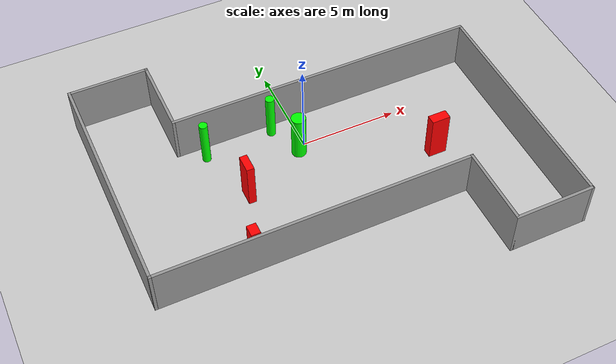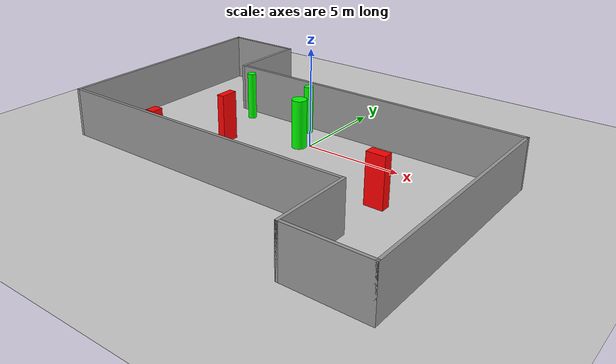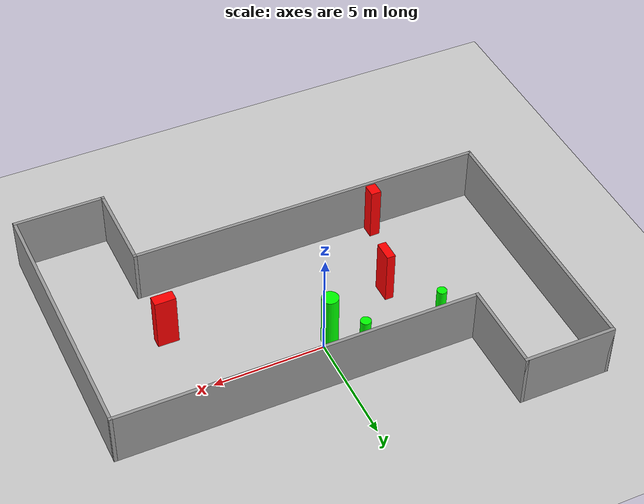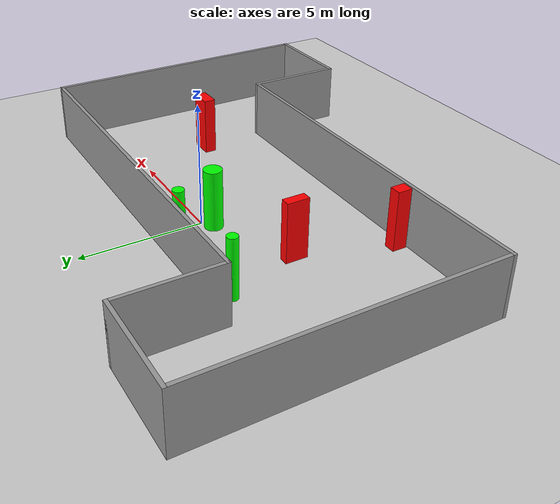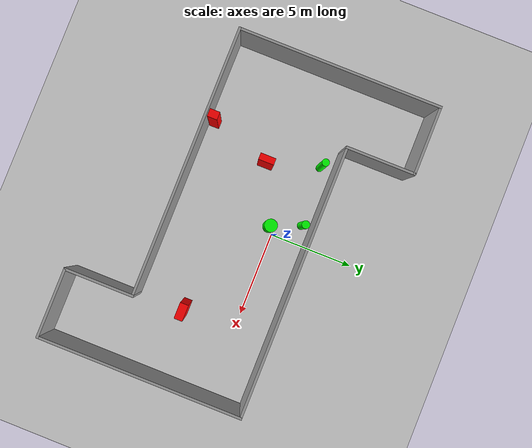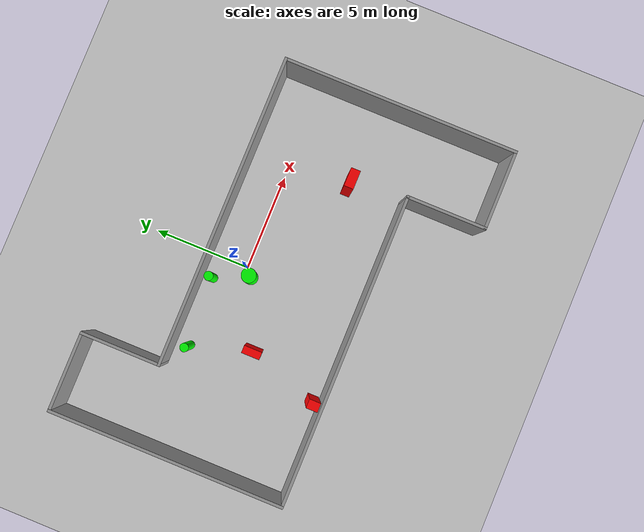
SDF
<sdf version="1.7">
 <world name="default">
  <light name="sun" type="directional">
   <pose>0 0 10 0 -0 0</pose>
   <diffuse>0.8 0.8 0.8 1</diffuse>
   <specular>0.2 0.2 0.2 1</specular>
   <attenuation>
    <range>1000</range>
    <constant>0.9</constant>
    <linear>0.01</linear>
    <quadratic>0.001</quadratic>
   </attenuation>
   <direction>-0.5 0.1 -0.9</direction>
   <spot><inner_angle>0</inner_angle><outer_angle>0</outer_angle><falloff>0</falloff></spot>
  </light>
  <model name="ground_plane">
   <static>1</static>
   <link name="link">
    <collision name="collision">
     <geometry><plane><normal>0 0 1</normal><size>100 100</size></plane></geometry>
     <surface>
      <contact><collide_bitmask>65535</collide_bitmask></contact>
      <friction><ode><mu>100</mu><mu2>50</mu2></ode></friction>
     </surface>
    </collision>
    <visual name="visual">
     <cast_shadows>0</cast_shadows>
     <geometry><plane><normal>0 0 1</normal><size>100 100</size></plane></geometry>
     <material>
      <script><uri>file://media/materials/scripts/gazebo.material</uri><name>Gazebo/Grey</name></script>
     </material>
    </visual>
   </link>
  </model>
  <gravity>0 0 -9.8</gravity>
  <magnetic_field>6e-06 2.3e-05 -4.2e-05</magnetic_field>
  <atmosphere type="adiabatic"/>
  <physics type="ode">
   <max_step_size>0.001</max_step_size>
   <real_time_factor>1</real_time_factor>
   <real_time_update_rate>1000</real_time_update_rate>
  </physics>
  <scene><ambient>0.4 0.4 0.4 1</ambient><background>0.7 0.7 0.7 1</background><shadows>1</shadows></scene>
  <spherical_coordinates>
   <surface_model>EARTH_WGS84</surface_model>
   <latitude_deg>0</latitude_deg>
   <longitude_deg>0</longitude_deg>
   <elevation>0</elevation>
   <heading_deg>0</heading_deg>
  </spherical_coordinates>
  <model name="my_base_walls">
   <link name="Wall_13">
    <collision name="Wall_13_Collision">
     <geometry><box><size>12.15 0.15 2.5</size></box></geometry>
     <pose>0 0 1.25 0 -0 0</pose>
    </collision>
    <visual name="Wall_13_Visual">
     <pose>0 0 1.25 0 -0 0</pose>
     <geometry><box><size>12.15 0.15 2.5</size></box></geometry>
     <material>
      <script><uri>file://media/materials/scripts/gazebo.material</uri><name>Gazebo/Grey</name></script>
      <ambient>1 1 1 1</ambient>
     </material>
     <meta><layer>0</layer></meta>
    </visual>
    <pose>10 -2 0 0 -0 1.5708</pose>
   </link>
   <link name="Wall_15">
    <collision name="Wall_15_Collision">
     <geometry><box><size>16.15 0.15 2.5</size></box></geometry>
     <pose>0 0 1.25 0 -0 0</pose>
    </collision>
    <visual name="Wall_15_Visual">
     <pose>0 0 1.25 0 -0 0</pose>
     <geometry><box><size>16.15 0.15 2.5</size></box></geometry>
     <material>
      <script><uri>file://media/materials/scripts/gazebo.material</uri><name>Gazebo/Grey</name></script>
      <ambient>1 1 1 1</ambient>
     </material>
     <meta><layer>0</layer></meta>
    </visual>
    <pose>2 4 0 0 -0 3.14159</pose>
   </link>
   <link name="Wall_17">
    <collision name="Wall_17_Collision">
     <geometry><box><size>4.15 0.15 2.5</size></box></geometry>
     <pose>0 0 1.25 0 -0 0</pose>
    </collision>
    <visual name="Wall_17_Visual">
     <pose>0 0 1.25 0 -0 0</pose>
     <geometry><box><size>4.15 0.15 2.5</size></box></geometry>
     <material>
      <script><uri>file://media/materials/scripts/gazebo.material</uri><name>Gazebo/Grey</name></script>
      <ambient>1 1 1 1</ambient>
     </material>
     <meta><layer>0</layer></meta>
    </visual>
    <pose>6 -6 0 0 -0 -1.5708</pose>
   </link>
   <link name="Wall_19">
    <collision name="Wall_19_Collision">
     <geometry><box><size>12.15 0.15 2.5</size></box></geometry>
     <pose>0 0 1.25 0 -0 0</pose>
    </collision>
    <visual name="Wall_19_Visual">
     <pose>0 0 1.25 0 -0 0</pose>
     <geometry><box><size>12.15 0.15 2.5</size></box></geometry>
     <material>
      <script><uri>file://media/materials/scripts/gazebo.material</uri><name>Gazebo/Grey</name></script>
      <ambient>1 1 1 1</ambient>
     </material>
     <meta><layer>0</layer></meta>
    </visual>
    <pose>-10 2 0 0 -0 1.5708</pose>
   </link>
   <link name="Wall_21">
    <collision name="Wall_21_Collision">
     <geometry><box><size>4.15 0.15 2.5</size></box></geometry>
     <pose>0 0 1.25 0 -0 0</pose>
    </collision>
    <visual name="Wall_21_Visual">
     <pose>0 0 1.25 0 -0 0</pose>
     <geometry><box><size>4.15 0.15 2.5</size></box></geometry>
     <material>
      <script><uri>file://media/materials/scripts/gazebo.material</uri><name>Gazebo/Grey</name></script>
      <ambient>1 1 1 1</ambient>
     </material>
     <meta><layer>0</layer></meta>
    </visual>
    <pose>-8 8 0 0 -0 0</pose>
   </link>
   <link name="Wall_23">
    <collision name="Wall_23_Collision">
     <geometry><box><size>4.15 0.15 2.5</size></box></geometry>
     <pose>0 0 1.25 0 -0 0</pose>
    </collision>
    <visual name="Wall_23_Visual">
     <pose>0 0 1.25 0 -0 0</pose>
     <geometry><box><size>4.15 0.15 2.5</size></box></geometry>
     <material>
      <script><uri>file://media/materials/scripts/gazebo.material</uri><name>Gazebo/Grey</name></script>
      <ambient>1 1 1 1</ambient>
     </material>
     <meta><layer>0</layer></meta>
    </visual>
    <pose>-6 6 0 0 -0 -1.5708</pose>
   </link>
   <link name="Wall_25">
    <collision name="Wall_25_Collision">
     <geometry><box><size>4.15 0.15 2.5</size></box></geometry>
     <pose>0 0 1.25 0 -0 0</pose>
    </collision>
    <visual name="Wall_25_Visual">
     <pose>0 0 1.25 0 -0 0</pose>
     <geometry><box><size>4.15 0.15 2.5</size></box></geometry>
     <material>
      <script><uri>file://media/materials/scripts/gazebo.material</uri><name>Gazebo/Grey</name></script>
      <ambient>1 1 1 1</ambient>
     </material>
     <meta><layer>0</layer></meta>
    </visual>
    <pose>8 -8 0 0 -0 0</pose>
   </link>
   <link name="Wall_9">
    <collision name="Wall_9_Collision">
     <geometry><box><size>16.15 0.15 2.5</size></box></geometry>
     <pose>0 0 1.25 0 -0 0</pose>
    </collision>
    <visual name="Wall_9_Visual">
     <pose>0 0 1.25 0 -0 0</pose>
     <geometry><box><size>16.15 0.15 2.5</size></box></geometry>
     <material>
      <script><uri>file://media/materials/scripts/gazebo.material</uri><name>Gazebo/Grey</name></script>
      <ambient>1 1 1 1</ambient>
     </material>
     <meta><layer>0</layer></meta>
    </visual>
    <pose>-2 -4 0 0 -0 3.14159</pose>
   </link>
   <static>1</static>
   <pose>-0 -2 0 0 -0 0</pose>
  </model>
  <model name="cylinder1">
   <static>1</static>
   <link name="link">
    <inertial>
     <mass>1</mass>
     <inertia><ixx>0.5</ixx><ixy>0</ixy><ixz>0</ixz><iyy>0.5</iyy><iyz>0</iyz><izz>1</izz></inertia>
    </inertial>
    <collision name="collision">
     <geometry><cylinder><radius>0.23006286822114339</radius><length>2.5</length></cylinder></geometry>
    </collision>
    <visual name="visual">
     <geometry><cylinder><radius>0.23006286822114339</radius><length>2.5</length></cylinder></geometry>
     <material>
      <ambient>0 1 0 1</ambient>
      <diffuse>0 1 0 1</diffuse>
      <specular>0.1 0.1 0.1 1</specular>
      <emissive>0 0 0 0</emissive>
     </material>
    </visual>
   </link>
   <pose>-1.1667911120254537 1.4319560219099259 1.25 0 0 0</pose>
  </model>
  <model name="cylinder2">
   <static>1</static>
   <link name="link">
    <inertial>
     <mass>1</mass>
     <inertia><ixx>0.5</ixx><ixy>0</ixy><ixz>0</ixz><iyy>0.5</iyy><iyz>0</iyz><izz>1</izz></inertia>
    </inertial>
    <collision name="collision">
     <geometry><cylinder><radius>0.2154865616014271</radius><length>2.5</length></cylinder></geometry>
    </collision>
    <visual name="visual">
     <geometry><cylinder><radius>0.2154865616014271</radius><length>2.5</length></cylinder></geometry>
     <material>
      <ambient>0 1 0 1</ambient>
      <diffuse>0 1 0 1</diffuse>
      <specular>0.1 0.1 0.1 1</specular>
      <emissive>0 0 0 0</emissive>
     </material>
    </visual>
   </link>
   <pose>-4.775089750457891 1.1978576606757452 1.25 0 0 0</pose>
  </model>
  <model name="cylinder3">
   <static>1</static>
   <link name="link">
    <inertial>
     <mass>1</mass>
     <inertia><ixx>0.5</ixx><ixy>0</ixy><ixz>0</ixz><iyy>0.5</iyy><iyz>0</iyz><izz>1</izz></inertia>
    </inertial>
    <collision name="collision">
     <geometry><cylinder><radius>0.37235620965226524</radius><length>2.5</length></cylinder></geometry>
    </collision>
    <visual name="visual">
     <geometry><cylinder><radius>0.37235620965226524</radius><length>2.5</length></cylinder></geometry>
     <material>
      <ambient>0 1 0 1</ambient>
      <diffuse>0 1 0 1</diffuse>
      <specular>0.1 0.1 0.1 1</specular>
      <emissive>0 0 0 0</emissive>
     </material>
    </visual>
   </link>
   <pose>-0.4152556467772044 -0.34030326885873485 1.25 0 0 0</pose>
  </model>
  <model name="box1">
   <static>1</static>
   <link name="link">
    <inertial>
     <mass>1</mass>
     <inertia><ixx>0.083</ixx><ixy>0</ixy><ixz>0</ixz><iyy>0.083</iyy><iyz>0</iyz><izz>0.083</izz></inertia>
    </inertial>
    <collision name="collision">
     <geometry><box><size>0.3842908172375129 0.9172374013356082 2.5</size></box></geometry>
    </collision>
    <visual name="visual">
     <geometry><box><size>0.3842908172375129 0.9172374013356082 2.5</size></box></geometry>
     <material>
      <ambient>1 0 0 1</ambient>
      <diffuse>1 0 0 1</diffuse>
      <specular>0.1 0.1 0.1 1</specular>
      <emissive>0 0 0 0</emissive>
     </material>
    </visual>
    <sensor name="my_contact" type="contact">
     <contact><collision>box_collision</collision><topic>__default_topic__</topic></contact>
    </sensor>
   </link>
   <pose>-3.770679544236394 -1.8835547600849667 1.25 0 0 0</pose>
  </model>
  <model name="box2">
   <static>1</static>
   <link name="link">
    <inertial>
     <mass>1</mass>
     <inertia><ixx>0.083</ixx><ixy>0</ixy><ixz>0</ixz><iyy>0.083</iyy><iyz>0</iyz><izz>0.083</izz></inertia>
    </inertial>
    <collision name="collision">
     <geometry><box><size>0.46590596268569845 0.5906896860514534 2.5</size></box></geometry>
    </collision>
    <visual name="visual">
     <geometry><box><size>0.46590596268569845 0.5906896860514534 2.5</size></box></geometry>
     <material>
      <ambient>1 0 0 1</ambient>
      <diffuse>1 0 0 1</diffuse>
      <specular>0.1 0.1 0.1 1</specular>
      <emissive>0 0 0 0</emissive>
     </material>
    </visual>
    <sensor name="my_contact" type="contact">
     <contact><collision>box_collision</collision><topic>__default_topic__</topic></contact>
    </sensor>
   </link>
   <pose>-4.985616339018716 -5.571599311746238 1.25 0 0 0</pose>
  </model>
  <model name="box3">
   <static>1</static>
   <link name="link">
    <inertial>
     <mass>1</mass>
     <inertia><ixx>0.083</ixx><ixy>0</ixy><ixz>0</ixz><iyy>0.083</iyy><iyz>0</iyz><izz>0.083</izz></inertia>
    </inertial>
    <collision name="collision">
     <geometry><box><size>0.9463908415262507 0.4875742470847955 2.5</size></box></geometry>
    </collision>
    <visual name="visual">
     <geometry><box><size>0.9463908415262507 0.4875742470847955 2.5</size></box></geometry>
     <material>
      <ambient>1 0 0 1</ambient>
      <diffuse>1 0 0 1</diffuse>
      <specular>0.1 0.1 0.1 1</specular>
      <emissive>0 0 0 0</emissive>
     </material>
    </visual>
    <sensor name="my_contact" type="contact">
     <contact><collision>box_collision</collision><topic>__default_topic__</topic></contact>
    </sensor>
   </link>
   <pose>5.81245852952277 -3.1769610960444616 1.25 0 0 0</pose>
  </model>
 </world>
</sdf>
